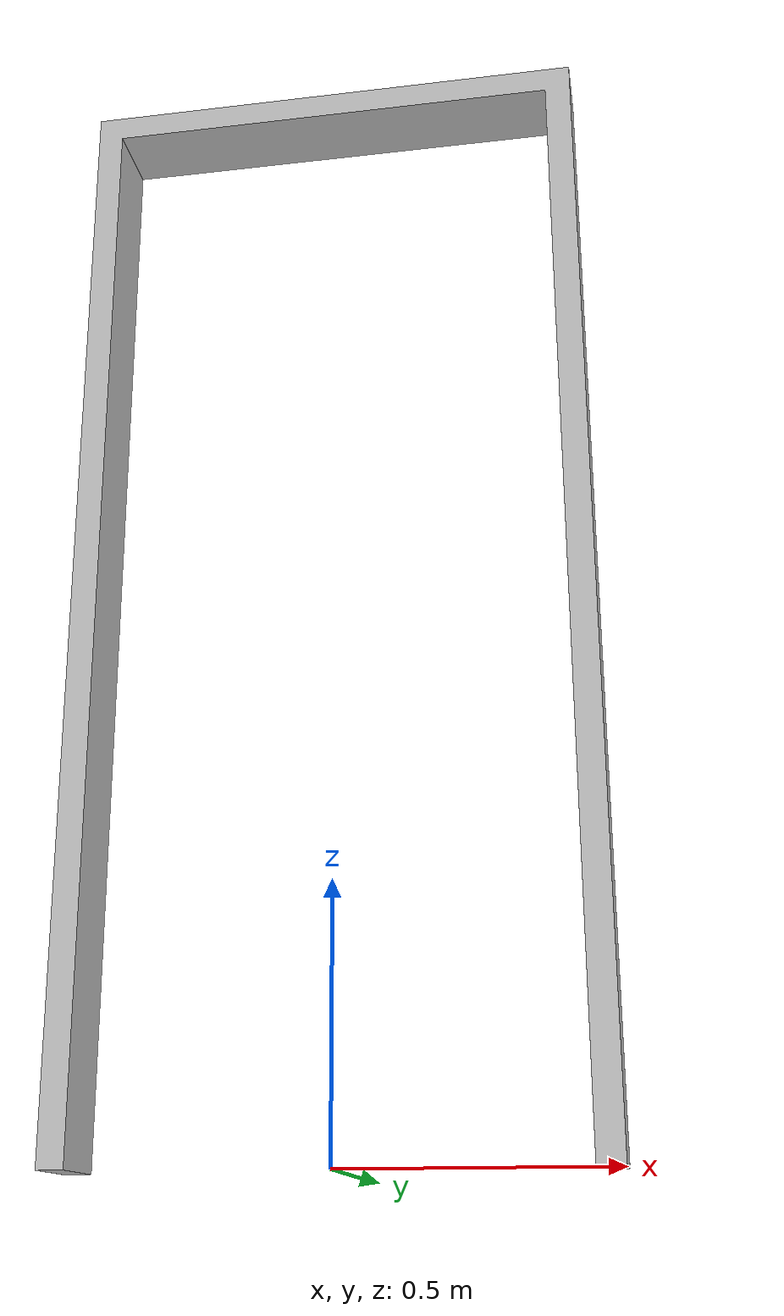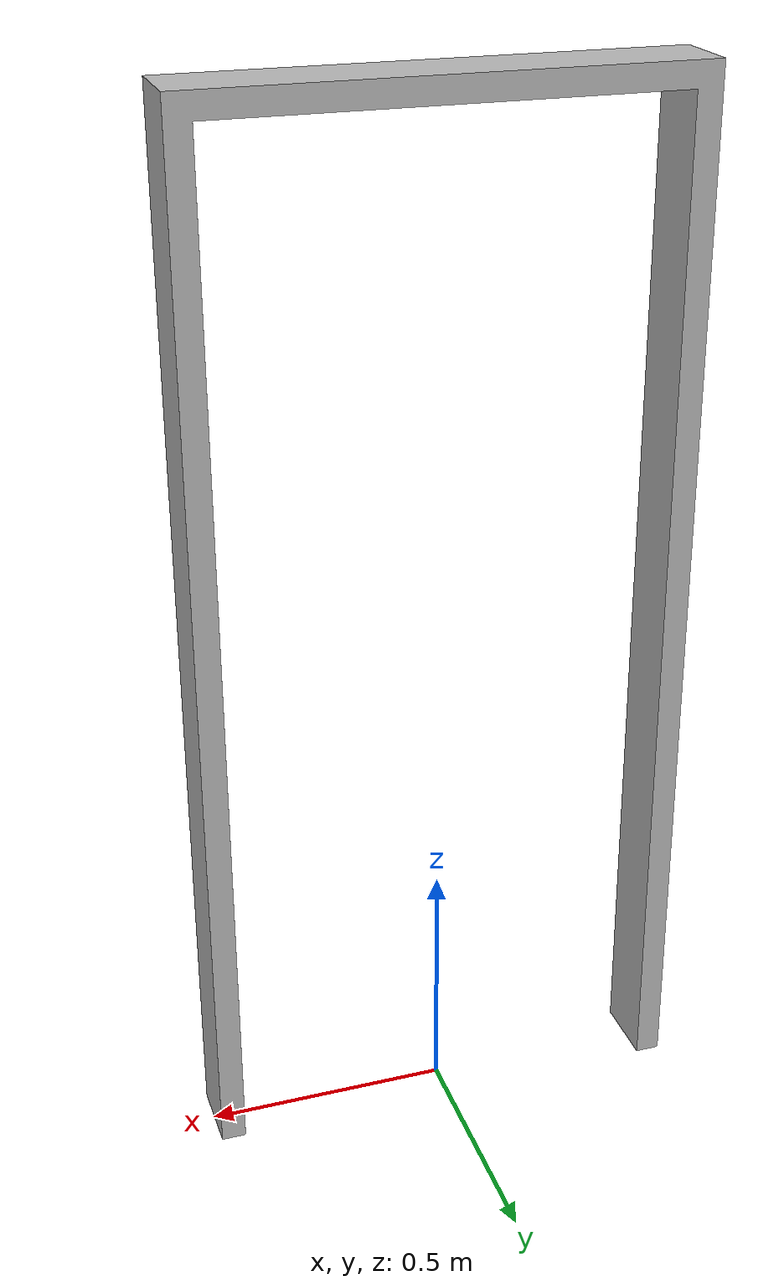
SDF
<?xml version="1.0"?>
<sdf version="1.4">
<model name="futra_90">
	<pose>0 0 0 0 0 0</pose>
	<static>true</static>
	<link name="futra_90_collision">
		<collision name="futra_90_collision">
		<geometry>
			<mesh>
				<uri>model://futra_90/meshes/model.dae</uri>

			</mesh>
		</geometry>
		</collision>
	<visual name="futra_90_mesh">
	<cast_shadows>false</cast_shadows>
		<geometry>
			<mesh>
				<uri> model://futra_90/meshes/model.dae</uri>

			</mesh>
		</geometry>
		<material>
		<script>
			<uri> model://futra_90/material/scripts</uri>
			<uri> model://futra_90/material/textures</uri>
			<name>futra_90/Diffuse</name>
		</script>
		</material>

	</visual>
</link>
</model>
</sdf>
